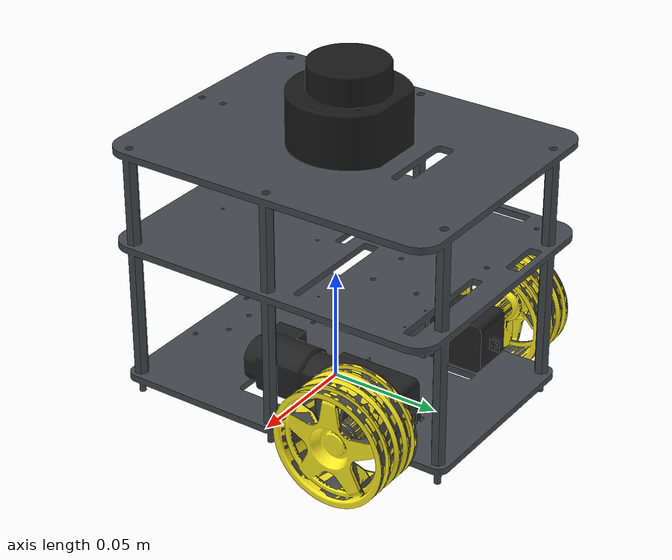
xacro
<?xml version="1.0" ?>
<!-- Generated using onshape-to-robot -->
<!-- Onshape document_id: 4757b8f98f7afcc7c3655639 -->
<robot name="fastbot" xmlns:xacro="http://ros.org/wiki/xacro">

  <xacro:property name="PI" value="3.141592653589793" />
  <xacro:macro name="fastbot_body" params="robot_name">

    <!-- Link base_link -->
    <link name="${robot_name}_base_link">
        <inertial>
            <origin xyz="0 0 0" rpy="0 0 0"/>
            <mass value="0.24695"/>
            <inertia ixx="0.000946018" ixy="-8.62213e-08" ixz="-1.4272e-08" iyy="0.000732103" iyz="1.16569e-05" izz="0.000816741"/>
        </inertial>
        <!-- Part fastbot_chassis -->
        <visual>
            <origin xyz="0.0573343 -0.0691426 0.00134516" rpy="0 -0 3.14159"/>
            <geometry>
                <mesh filename="package://fastbot_description/onshape/assets/base_link.stl"/>
            </geometry>
            <material name="fastbot_chassis_material">
                <color rgba="0.262745 0.282353 0.301961 1.0"/>
            </material>
        </visual>
        <collision>
            <origin xyz="0.0573343 -0.0691426 0.00134516" rpy="0 -0 3.14159"/>
            <geometry>
                <mesh filename="package://fastbot_description/onshape/assets/base_link.stl"/>
            </geometry>
        </collision>
    </link>

    <!-- Link fastbot_motor -->
    <link name="${robot_name}_motor_1">
        <inertial>
            <origin xyz="0.0067446 0.0085 -0.00855065" rpy="0 0 0"/>
            <mass value="0.0339689"/>
            <inertia ixx="2.5517e-06" ixy="-3.26147e-15" ixz="-9.70451e-07" iyy="1.80062e-05" iyz="-1.94099e-15" izz="1.80884e-05"/>
        </inertial>
        <!-- Part fastbot_motor -->
        <visual>
            <origin xyz="0.0935 -0.00775 -0.036" rpy="-1.5708 -1.5708 0"/>
            <geometry>
                <mesh filename="package://fastbot_description/onshape/assets/fastbot_motor.stl"/>
            </geometry>
            <material name="fastbot_motor_material">
                <color rgba="0.129412 0.129412 0.129412 1.0"/>
            </material>
        </visual>
        <collision>
            <origin xyz="0.0935 -0.00775 -0.036" rpy="-1.5708 -1.5708 0"/>
            <geometry>
                <mesh filename="package://fastbot_description/onshape/assets/fastbot_motor.stl"/>
            </geometry>
        </collision>
    </link>

    <!-- Link wheel_right -->
    <link name="${robot_name}_wheel_right">
        <inertial>
            <origin xyz="0 0 0" rpy="0 0 0"/>
            <mass value="0.03"/>
            <inertia ixx="0.0001" ixy="0" ixz="0" iyy="0.0001" iyz="0" izz="0.0002"/>
        </inertial>
        <!-- Part wheel_d65x25_v1 -->
        <visual>
            <origin xyz="0.1135 0.0162 0.103475" rpy="1.5708 1.5708 0"/>
            <geometry>
                <mesh filename="package://fastbot_description/onshape/assets/wheel_d65x25_v1.stl"/>
            </geometry>
            <material name="wheel_d65x25_v1_material">
                <color rgba="0.290196 0.290196 0.290196 1.0"/>
            </material>
        </visual>
        <collision>
            <origin xyz="0.1135 0.0162 0.103475" rpy="1.5708 1.5708 0"/>
            <geometry>
                <mesh filename="package://fastbot_description/onshape/assets/wheel_d65x25_v1.stl"/>
            </geometry>
        </collision>
        <!-- Part wheel_d65x25_v1_2 -->
        <visual>
            <origin xyz="0.1135 0.0162 0.1039" rpy="1.5708 1.5708 0"/>
            <geometry>
                <mesh filename="package://fastbot_description/onshape/assets/wheel_d65x25_v1.stl"/>
            </geometry>
            <material name="wheel_d65x25_v1_2_material">
                <color rgba="1 0.933333 0.133333 1.0"/>
            </material>
        </visual>
        <collision>
            <origin xyz="0.1135 0.0162 0.1039" rpy="1.5708 1.5708 0"/>
            <geometry>
                <mesh filename="package://fastbot_description/onshape/assets/wheel_d65x25_v1.stl"/>
            </geometry>
        </collision>
    </link>

    <!-- Joint from fastbot_motor to wheel_d65x25_v1 -->
    <joint name="${robot_name}_right_wheel" type="continuous">
        <origin xyz="-0.02 0.0085 -0.0191" rpy="0 0 0"/>
        <parent link="${robot_name}_motor_1"/>
        <child link="${robot_name}_wheel_right"/>
        <axis xyz="0 0 1"/>
    </joint>

    <!-- Joint from fastbot_chassis to fastbot_motor -->
    <joint name="${robot_name}_right_motor" type="fixed">
        <origin xyz="-0.0266657 0.0243574 0.0260952" rpy="-1.5708 -2.94692e-47 -1.5708"/>
        <parent link="${robot_name}_base_link"/>
        <child link="${robot_name}_motor_1"/>
        <axis xyz="0 0 1"/>
    </joint>

    <!-- Link fastbot_motor_2 -->
    <link name="${robot_name}_motor_2">
        <inertial>
            <origin xyz="0.0067446 -0.0085 -0.00855065" rpy="0 0 0"/>
            <mass value="0.0339689"/>
            <inertia ixx="2.5517e-06" ixy="-3.26147e-15" ixz="-9.70451e-07" iyy="1.80062e-05" iyz="-1.94099e-15" izz="1.80884e-05"/>
        </inertial>
        <!-- Part fastbot_motor_2 -->
        <visual>
            <origin xyz="0.0935 -0.02475 -0.036" rpy="-1.5708 -1.5708 0"/>
            <geometry>
                <mesh filename="package://fastbot_description/onshape/assets/fastbot_motor.stl"/>
            </geometry>
            <material name="fastbot_motor_2_material">
                <color rgba="0.129412 0.129412 0.129412 1.0"/>
            </material>
        </visual>
        <collision>
            <origin xyz="0.0935 -0.02475 -0.036" rpy="-1.5708 -1.5708 0"/>
            <geometry>
                <mesh filename="package://fastbot_description/onshape/assets/fastbot_motor.stl"/>
            </geometry>
        </collision>
    </link>

    <!-- Link wheel_d65x25_v1_2 -->
    <link name="${robot_name}_wheel_left">
        <inertial>
            <origin xyz="0 0 0" rpy="0 0 0"/>
            <mass value="0.03"/>
            <inertia ixx="0.0001" ixy="0" ixz="0" iyy="0.0001" iyz="0" izz="0.0002"/>
        </inertial>
        <!-- Part wheel_d65x25_v1_3 -->
        <visual>
            <origin xyz="0.1135 0.0162 0.1039" rpy="1.5708 1.5708 0"/>
            <geometry>
                <mesh filename="package://fastbot_description/onshape/assets/wheel_d65x25_v1.stl"/>
            </geometry>
            <material name="wheel_d65x25_v1_3_material">
                <color rgba="1 0.933333 0.133333 1.0"/>
            </material>
        </visual>
        <collision>
            <origin xyz="0.1135 0.0162 0.1039" rpy="1.5708 1.5708 0"/>
            <geometry>
                <mesh filename="package://fastbot_description/onshape/assets/wheel_d65x25_v1.stl"/>
            </geometry>
        </collision>
        <!-- Part wheel_d65x25_v1_4 -->
        <visual>
            <origin xyz="0.1135 0.0162 0.104325" rpy="1.5708 1.5708 0"/>
            <geometry>
                <mesh filename="package://fastbot_description/onshape/assets/wheel_d65x25_v1.stl"/>
            </geometry>
            <material name="wheel_d65x25_v1_4_material">
                <color rgba="0.290196 0.290196 0.290196 1.0"/>
            </material>
        </visual>
        <collision>
            <origin xyz="0.1135 0.0162 0.104325" rpy="1.5708 1.5708 0"/>
            <geometry>
                <mesh filename="package://fastbot_description/onshape/assets/wheel_d65x25_v1.stl"/>
            </geometry>
        </collision>
    </link>

    <!-- Joint from fastbot_motor_2 to wheel_d65x25_v1_2 -->
    <joint name="${robot_name}_left_wheel" type="continuous">
        <origin xyz="-0.02 -0.0085 -0.0191" rpy="0 0 0"/>
        <parent link="${robot_name}_motor_2"/>
        <child link="${robot_name}_wheel_left"/>
        <axis xyz="0 0 -1"/>
    </joint>

    <!-- Joint from fastbot_chassis to fastbot_motor_2 -->
    <joint name="${robot_name}_left_motor" type="fixed">
        <origin xyz="0.0213343 0.0243574 0.0260952" rpy="1.5708 -2.96391e-30 -1.5708"/>
        <parent link="${robot_name}_base_link"/>
        <child link="${robot_name}_motor_2"/>
        <axis xyz="0 0 1"/>
    </joint>

    <!-- Link lslidar_n10 -->
    <link name="${robot_name}_n10_v2">
        <inertial>
            <origin xyz="0 0 0" rpy="0 0 0"/>
            <mass value="0.05"/>
            <inertia ixx="1e-09" ixy="0" ixz="0" iyy="1e-09" iyz="0" izz="1e-09"/>
        </inertial>
        <!-- Part lslidar_n10 -->
        <visual>
            <origin xyz="-0.074 -0.06 0.11" rpy="-3.14159 5.94511e-32 -8.90522e-65"/>
            <geometry>
                <mesh filename="package://fastbot_description/onshape/assets/lslidar_n10.stl"/>
            </geometry>
            <material name="lslidar_n10_material">
                <color rgba="0.0980392 0.0980392 0.0980392 1.0"/>
            </material>
        </visual>
        <collision>
            <origin xyz="-0.074 -0.06 0.11" rpy="-3.14159 5.94511e-32 -8.90522e-65"/>
            <geometry>
                <mesh filename="package://fastbot_description/onshape/assets/lslidar_n10.stl"/>
            </geometry>
        </collision>
    </link>

    <!-- Joint from fastbot_chassis to lslidar_n10 -->
    <joint name="${robot_name}_lidar" type="fixed">
        <origin xyz="-0.0166657 -0.00914257 0.111345" rpy="3.14159 1.13983e-46 -3.14159"/>
        <parent link="${robot_name}_base_link"/>
        <child link="${robot_name}_n10_v2"/>
        <axis xyz="0 0 1"/>
    </joint>

    <!-- Link raspicam -->
    <link name="${robot_name}_camera">
        <inertial>
            <origin xyz="0 0 0" rpy="0 0 0"/>
            <mass value="0.01"/>
            <inertia ixx="1e-09" ixy="0" ixz="0" iyy="1e-09" iyz="0" izz="1e-09"/>
        </inertial>
        <!-- Part raspicam -->
        <visual>
            <origin xyz="-0.0105 0.0125 -0.00212" rpy="3.14159 -3.05067e-31 -1.55575e-61"/>
            <geometry>
                <mesh filename="package://fastbot_description/onshape/assets/raspicam.stl"/>
            </geometry>
            <material name="raspicam_material">
                <color rgba="0.34902 0.376471 0.4 1.0"/>
            </material>
        </visual>
        <collision>
            <origin xyz="-0.0105 0.0125 -0.00212" rpy="3.14159 -3.05067e-31 -1.55575e-61"/>
            <geometry>
                <mesh filename="package://fastbot_description/onshape/assets/raspicam.stl"/>
            </geometry>
        </collision>
    </link>

    <!-- Joint from fastbot_chassis to raspicam -->
    <joint name="${robot_name}_camera" type="fixed">
        <origin xyz="0.00783428 -0.0661426 0.100995" rpy="-1.5708 1.14468e-45 6.41848e-15"/>
        <parent link="${robot_name}_base_link"/>
        <child link="${robot_name}_camera"/>
        <axis xyz="0 0 1"/>
    </joint>

    <!-- Link pololu_ball_caster -->
    <link name="${robot_name}_ball_caster">
        <inertial>
            <origin xyz="0 0 0" rpy="0 0 0"/>
            <mass value="0.01"/>
            <inertia ixx="1e-09" ixy="0" ixz="0" iyy="1e-09" iyz="0" izz="1e-09"/>
        </inertial>
        <!-- Part pololu_ball_caster -->
        <visual>
            <origin xyz="0.006731 0 -0.0106945" rpy="-1.5708 -0 0"/>
            <geometry>
                <mesh filename="package://fastbot_description/onshape/assets/pololu_ball_caster.stl"/>
            </geometry>
            <material name="pololu_ball_caster_material">
                <color rgba="0.34902 0.376471 0.4 1.0"/>
            </material>
        </visual>
        <collision>
            <origin xyz="0.006731 0 -0.0106945" rpy="-1.5708 -0 0"/>
            <geometry>
                <mesh filename="package://fastbot_description/onshape/assets/pololu_ball_caster.stl"/>
            </geometry>
        </collision>
    </link>

    <!-- Joint from fastbot_chassis to pololu_ball_caster -->
    <joint name="caster" type="fixed">
        <origin xyz="-0.0100317 -0.0541426 0.00334516" rpy="0 -0 0"/>
        <parent link="${robot_name}_base_link"/>
        <child link="${robot_name}_ball_caster"/>
        <axis xyz="0 0 1"/>
    </joint>

  </xacro:macro>

  <xacro:fastbot_body robot_name="fastbot"/>

</robot>
